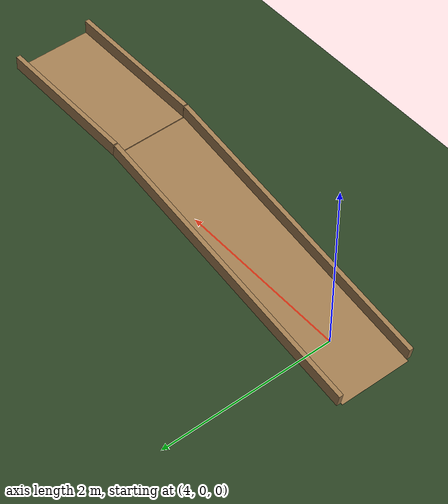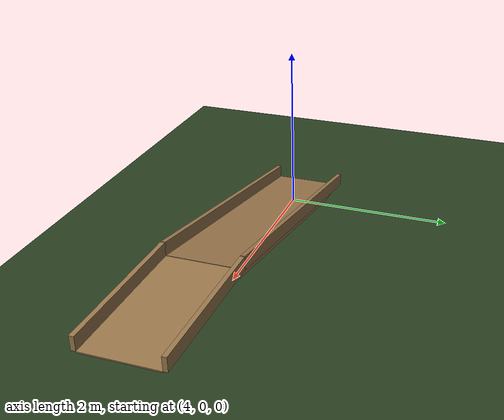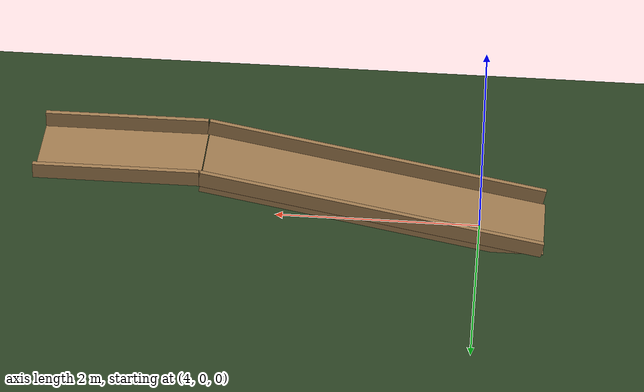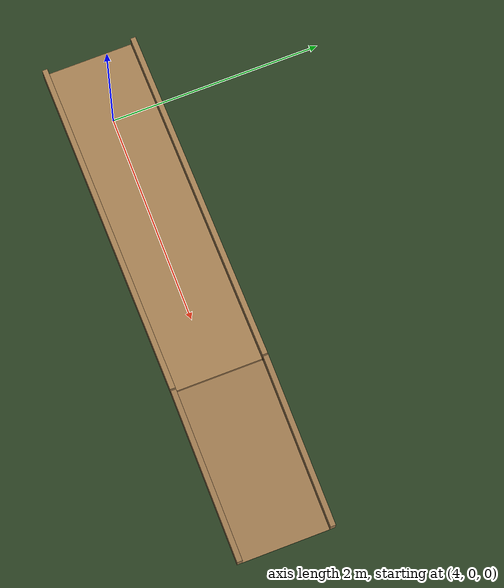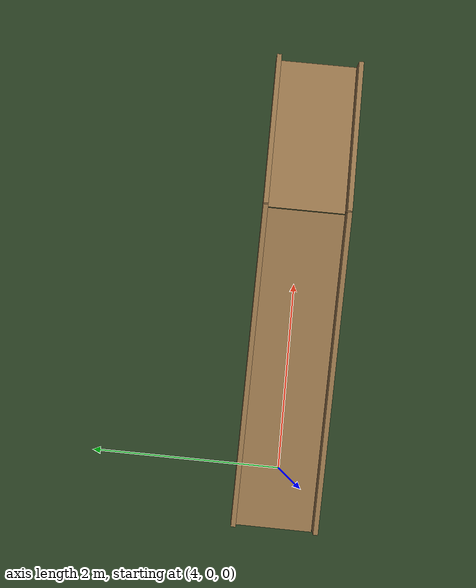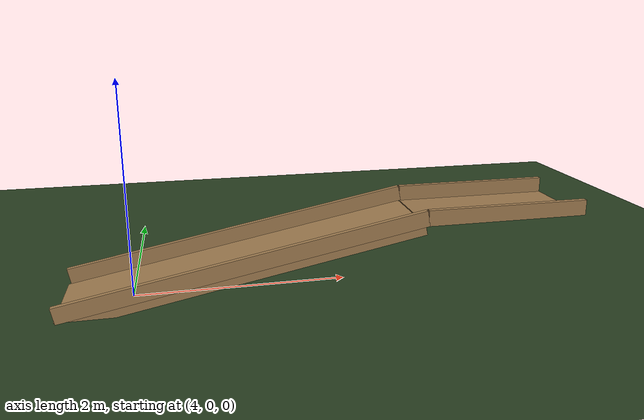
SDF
<sdf version="1.10">
 <world name="cfr_obstacle_course">
  <model name="ground">
   <static>true</static>
   <pose>0.005 -4.540 0 0 0 0</pose>
   <link name="link">
    <collision name="collision">
     <geometry><plane><normal>0 0 1</normal><size>30 24</size></plane></geometry>
     <surface>
      <friction>
       <ode><mu>50</mu></ode>
       <bullet><friction>1</friction><rolling_friction>0.001</rolling_friction></bullet>
      </friction>
     </surface>
    </collision>
    <visual name="visual">
     <geometry><plane><normal>0 0 1</normal><size>30 24</size></plane></geometry>
     <material><diffuse>0.16 0.25 0.13 1</diffuse></material>
    </visual>
   </link>
  </model>
  <model name="bridge">
   <static>true</static>
   <link name="link">
    <collision name="ramp_collision">
     <pose>5.0354 0.0005 0.2675 0.0000 -0.1893 0.0000</pose>
     <geometry><box><size>3.3750 0.8128 0.1000</size></box></geometry>
    </collision>
    <visual name="ramp_visual">
     <pose>5.0354 0.0005 0.2675 0.0000 -0.1893 0.0000</pose>
     <geometry><box><size>3.3750 0.8128 0.1000</size></box></geometry>
     <visibility_flags>1</visibility_flags>
     <material><diffuse>0.62 0.48 0.31 1</diffuse></material>
    </visual>
    <collision name="ramp_rail_-1_collision">
     <pose>5.0354 -0.4309 0.3937 0.0000 -0.1893 0.0000</pose>
     <geometry><box><size>3.3750 0.0500 0.1524</size></box></geometry>
    </collision>
    <visual name="ramp_rail_-1_visual">
     <pose>5.0354 -0.4309 0.3937 0.0000 -0.1893 0.0000</pose>
     <geometry><box><size>3.3750 0.0500 0.1524</size></box></geometry>
     <material><diffuse>0.62 0.48 0.31 1</diffuse></material>
    </visual>
    <collision name="ramp_rail_1_collision">
     <pose>5.0354 0.4319 0.3937 0.0000 -0.1893 0.0000</pose>
     <geometry><box><size>3.3750 0.0500 0.1524</size></box></geometry>
    </collision>
    <visual name="ramp_rail_1_visual">
     <pose>5.0354 0.4319 0.3937 0.0000 -0.1893 0.0000</pose>
     <geometry><box><size>3.3750 0.0500 0.1524</size></box></geometry>
     <material><diffuse>0.62 0.48 0.31 1</diffuse></material>
    </visual>
    <collision name="deck_collision">
     <pose>7.4961 0.0005 0.6285 0.0000 0.0000 0.0000</pose>
     <geometry><box><size>1.6066 0.8128 0.0130</size></box></geometry>
    </collision>
    <visual name="deck_visual">
     <pose>7.4961 0.0005 0.6285 0.0000 0.0000 0.0000</pose>
     <geometry><box><size>1.6066 0.8128 0.0130</size></box></geometry>
     <visibility_flags>1</visibility_flags>
     <material><diffuse>0.62 0.48 0.31 1</diffuse></material>
    </visual>
    <collision name="deck_rail_-1_collision">
     <pose>7.4961 -0.4309 0.7112 0.0000 0.0000 0.0000</pose>
     <geometry><box><size>1.6066 0.0500 0.1524</size></box></geometry>
    </collision>
    <visual name="deck_rail_-1_visual">
     <pose>7.4961 -0.4309 0.7112 0.0000 0.0000 0.0000</pose>
     <geometry><box><size>1.6066 0.0500 0.1524</size></box></geometry>
     <material><diffuse>0.62 0.48 0.31 1</diffuse></material>
    </visual>
    <collision name="deck_rail_1_collision">
     <pose>7.4961 0.4319 0.7112 0.0000 0.0000 0.0000</pose>
     <geometry><box><size>1.6066 0.0500 0.1524</size></box></geometry>
    </collision>
    <visual name="deck_rail_1_visual">
     <pose>7.4961 0.4319 0.7112 0.0000 0.0000 0.0000</pose>
     <geometry><box><size>1.6066 0.0500 0.1524</size></box></geometry>
     <material><diffuse>0.62 0.48 0.31 1</diffuse></material>
    </visual>
   </link>
  </model>
 </world>
</sdf>
